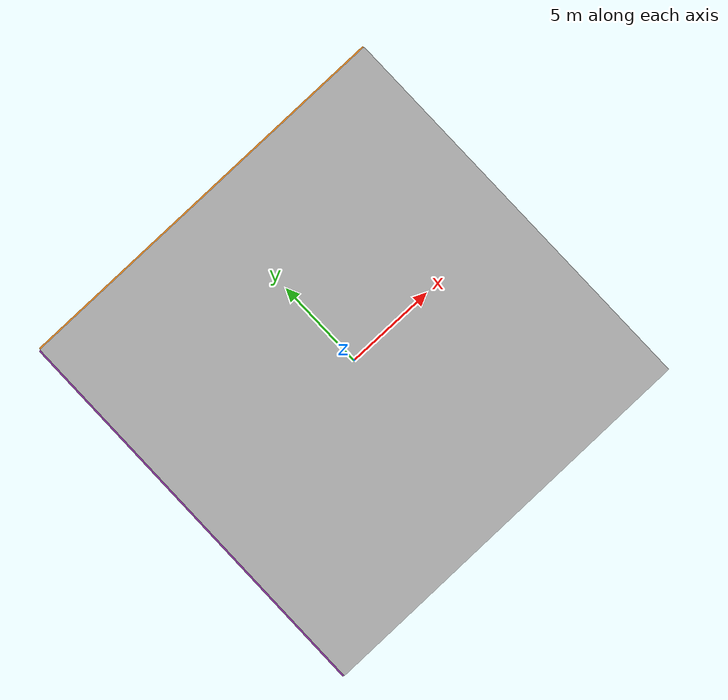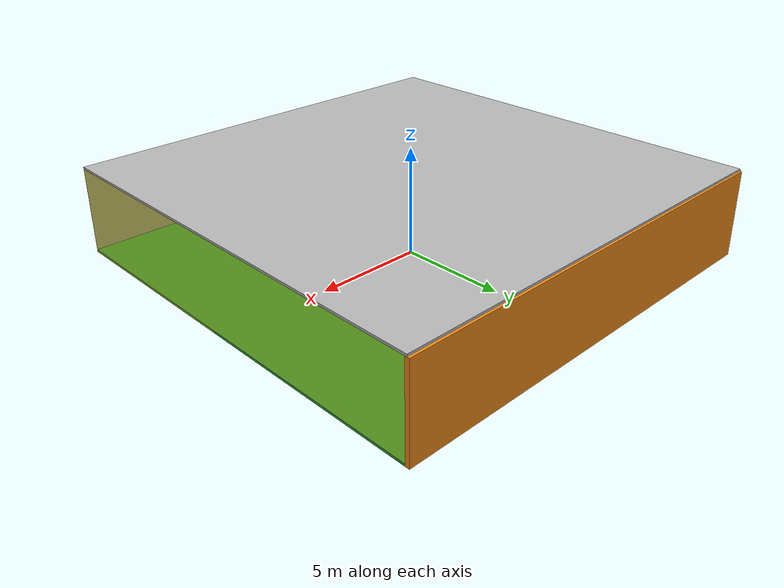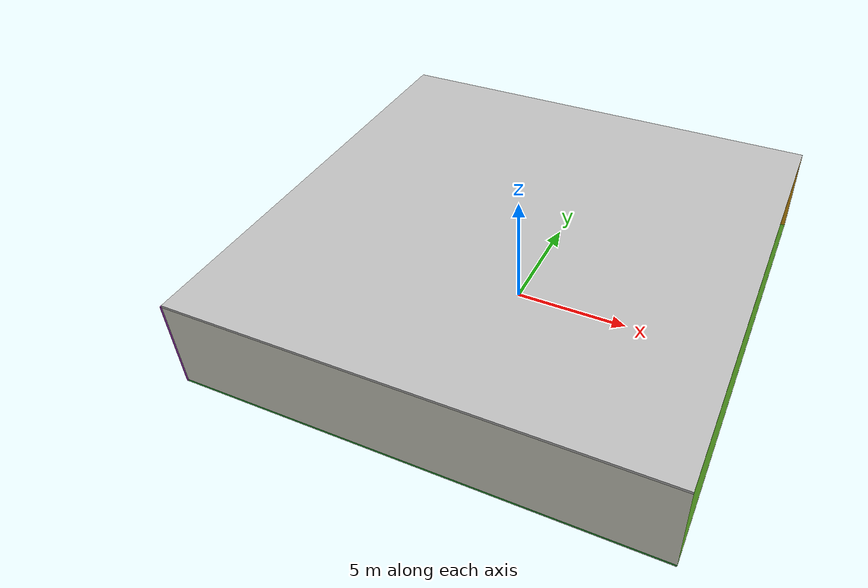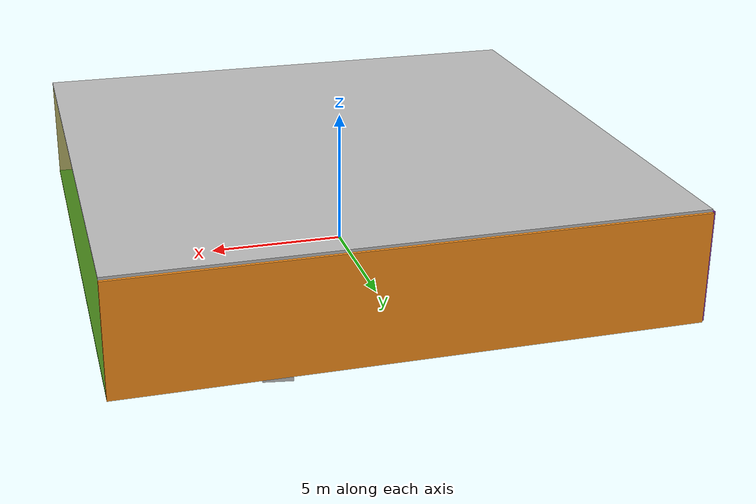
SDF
<sdf version="1.4">
 <world name="default">
  <physics type="ode">
   <max_step_size>0.001</max_step_size>
   <real_time_factor>1</real_time_factor>
   <real_time_update_rate>1000</real_time_update_rate>
   <gravity>0 0 -9.8</gravity>
  </physics>
  <scene><ambient>0.4 0.4 0.4 1</ambient><background>0.7 0.7 0.7 1</background><shadows>1</shadows></scene>
  <model name="Surrounding">
   <static>1</static>
   <link name="Ceiling">
    <collision name="Ceiling_Collision"><geometry><box><size>20 20 0.1</size></box></geometry></collision>
    <visual name="Ceiling_Visual">
     <geometry><box><size>20 20 0.1</size></box></geometry>
     <material>
      <script><uri>file://media/materials/scripts/gazebo.material</uri><name>Gazebo/LightOn</name></script>
     </material>
    </visual>
    <pose>0 0 4.05 0 0 0</pose>
   </link>
   <link name="Wall_South">
    <collision name="Wall_South_Collision">
     <geometry><box><size>20 0 4</size></box></geometry>
     <pose>0 0 2 0 -0 0</pose>
    </collision>
    <visual name="Wall_South_Visual">
     <pose>0 0 2 0 -0 0</pose>
     <geometry><box><size>20 0 4</size></box></geometry>
     <material>
      <script><uri>file://media/materials/scripts/gazebo.material</uri><name>Gazebo/PaintedWall</name></script>
     </material>
    </visual>
    <velocity_decay><linear>0</linear><angular>0</angular></velocity_decay>
    <pose>0 -10 0 0 -0 0</pose>
   </link>
   <link name="Wall_East">
    <collision name="Wall_21_Collision">
     <geometry><box><size>20 0 4</size></box></geometry>
     <pose>0 0 2 0 -0 0</pose>
    </collision>
    <visual name="Wall_21_Visual">
     <pose>0 0 2 0 -0 0</pose>
     <geometry><box><size>20 0 4</size></box></geometry>
     <material>
      <script>
       <uri>file://media/materials/scripts/gazebo.material</uri>
       <name>Gazebo/YellowTransparent</name>
      </script>
     </material>
    </visual>
    <velocity_decay><linear>0</linear><angular>0</angular></velocity_decay>
    <pose>10 0 0 0 -0 1.5708</pose>
   </link>
   <link name="Wall_North">
    <collision name="Wall_22_Collision">
     <geometry><box><size>20 0.2 4</size></box></geometry>
     <pose>0 0 2 0 -0 0</pose>
    </collision>
    <visual name="Wall_22_Visual">
     <pose>0 0 2 0 -0 0</pose>
     <geometry><box><size>20 0.2 4</size></box></geometry>
     <material>
      <script><uri>file://media/materials/scripts/gazebo.material</uri><name>Gazebo/Orange</name></script>
     </material>
    </visual>
    <velocity_decay><linear>0</linear><angular>0</angular></velocity_decay>
    <pose>0 10 0 0 -0 0</pose>
   </link>
   <link name="Wall_West">
    <collision name="Wall_23_Collision">
     <geometry><box><size>20 0.2 4</size></box></geometry>
     <pose>0 0 2 0 -0 0</pose>
    </collision>
    <visual name="Wall_23_Visual">
     <pose>0 0 2 0 -0 0</pose>
     <geometry><box><size>20 0.2 4</size></box></geometry>
     <material>
      <script><uri>file://media/materials/scripts/gazebo.material</uri><name>Gazebo/Purple</name></script>
     </material>
    </visual>
    <velocity_decay><linear>0</linear><angular>0</angular></velocity_decay>
    <pose>-10 0 0 0 0 -1.5708</pose>
   </link>
   <link name="Ground_link">
    <collision name="collision">
     <pose>0 0 .05 0 -0 0</pose>
     <geometry><box><size>20 20 0.1</size></box></geometry>
    </collision>
    <visual name="visual">
     <pose>0 0 .05 0 -0 0</pose>
     <geometry><box><size>20 20 0.1</size></box></geometry>
     <material>
      <script><uri>file://media/materials/scripts/gazebo.material</uri><name>Gazebo/GreenGlow</name></script>
     </material>
    </visual>
   </link>
   <static>1</static>
  </model>
  <spherical_coordinates>
   <surface_model>EARTH_WGS84</surface_model>
   <latitude_deg>0</latitude_deg>
   <longitude_deg>0</longitude_deg>
   <elevation>0</elevation>
   <heading_deg>0</heading_deg>
  </spherical_coordinates>
  <light name="lightball_0" type="diffuse">
   <diffuse>0.8 0.8 0.8 1</diffuse>
   <specular>0.2 0.2 0.2 1</specular>
   <attenuation>
    <range>100</range>
    <constant>0.7</constant>
    <linear>0.01</linear>
    <quadratic>0.001</quadratic>
   </attenuation>
   <direction>-0.5 0.1 -0.9</direction>
   <pose>-5.72460857039 -2.6021360514 0.869692829086 0 0 0</pose>
  </light>
  <light name="lightball_1" type="diffuse">
   <diffuse>0.8 0.8 0.8 1</diffuse>
   <specular>0.2 0.2 0.2 1</specular>
   <attenuation>
    <range>100</range>
    <constant>0.7</constant>
    <linear>0.01</linear>
    <quadratic>0.001</quadratic>
   </attenuation>
   <direction>-0.5 0.1 -0.9</direction>
   <pose>1.35755300905 -4.20694373705 2.97067345923 0 0 0</pose>
  </light>
  <light name="lightball_2" type="diffuse">
   <diffuse>0.8 0.8 0.8 1</diffuse>
   <specular>0.2 0.2 0.2 1</specular>
   <attenuation>
    <range>100</range>
    <constant>0.7</constant>
    <linear>0.01</linear>
    <quadratic>0.001</quadratic>
   </attenuation>
   <direction>-0.5 0.1 -0.9</direction>
   <pose>-5.35633549889 2.1842522217 3.13884395019 0 0 0</pose>
  </light>
  <light name="lightball_3" type="diffuse">
   <diffuse>0.8 0.8 0.8 1</diffuse>
   <specular>0.2 0.2 0.2 1</specular>
   <attenuation>
    <range>100</range>
    <constant>0.7</constant>
    <linear>0.01</linear>
    <quadratic>0.001</quadratic>
   </attenuation>
   <direction>-0.5 0.1 -0.9</direction>
   <pose>4.40777350703 6.85088605751 1.81984985195 0 0 0</pose>
  </light>
  <light name="lightball_4" type="diffuse">
   <diffuse>0.8 0.8 0.8 1</diffuse>
   <specular>0.2 0.2 0.2 1</specular>
   <attenuation>
    <range>100</range>
    <constant>0.7</constant>
    <linear>0.01</linear>
    <quadratic>0.001</quadratic>
   </attenuation>
   <direction>-0.5 0.1 -0.9</direction>
   <pose>4.44564972961 -4.70668892524 3.3079871471 0 0 0</pose>
  </light>
  <include><uri>model://cabinet</uri><pose>-7.06364760546 7.07699108525 0 0 0 1.30784889731</pose></include>
  <include>
   <uri>model://construction_cone</uri>
   <pose>1.62559411367 -4.22682224315 0 0 0 0.739548953248</pose>
  </include>
  <include>
   <uri>model://textured_shapes</uri>
   <pose>4.23733705858 7.44999347402 0 0 0 2.98169827858</pose>
  </include>
 </world>
</sdf>

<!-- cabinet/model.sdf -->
<sdf version="1.5">
  <model name="cabinet">
    <static>true</static>
    <link name="cabinet_bottom_plate">
      <inertial>
        <pose>0 0 -1 0 0 0</pose>
        <inertia>
          <ixx>2.050000</ixx>
          <ixy>0</ixy>
          <ixz>0</ixz>
          <iyy>2.050000</iyy>
          <iyz>0</iyz>
          <izz>2.050000</izz>
        </inertia>
        <mass>25.000000</mass>
      </inertial>
      <collision name="cabinet_bottom_plate_geom">
        <pose>0 0 0.010000 0 0 0</pose>
        <geometry>
          <box>
            <size>0.450000 0.450000 0.020000</size>
          </box>
        </geometry>
      </collision>
      <visual name="cabinet_bottom_plate_geom_visual">
        <pose>0 0 0.010000 0 0 0</pose>
        <geometry>
          <box>
            <size>0.450000 0.450000 0.020000</size>
          </box>
        </geometry>
        <material>
          <script>
            <uri>model://media/materials/scripts/gazebo.material</uri>
            <name>Gazebo/Wood</name>
          </script>
        </material>
      </visual>
      <collision name="cabinet_bottom_plate_geom_cabinet_back_plate">
        <pose>0.235000 0 0.510000 0 0 0</pose>
        <geometry>
          <box>
            <size>0.020000 0.450000 1.020000</size>
          </box>
        </geometry>
      </collision>
      <visual name="cabinet_bottom_plate_geom_cabinet_back_plate_visual">
        <pose>0.235000 0 0.510000 0 0 0</pose>
        <geometry>
          <box>
            <size>0.020000 0.450000 1.020000</size>
          </box>
        </geometry>
        <material>
          <script>
            <uri>model://media/materials/scripts/gazebo.material</uri>
            <name>Gazebo/Wood</name>
          </script>
        </material>
      </visual>
      <collision name="cabinet_bottom_plate_geom_cabinet_left_plate">
        <pose>0 0.235000 0.510000 0 0 0</pose>
        <geometry>
          <box>
            <size>0.450000 0.020000 1.020000</size>
          </box>
        </geometry>
      </collision>
      <visual name="cabinet_bottom_plate_geom_cabinet_left_plate_visual">
        <pose>0 0.235000 0.510000 0 0 0</pose>
        <geometry>
          <box>
            <size>0.450000 0.020000 1.020000</size>
          </box>
        </geometry>
        <material>
          <script>
            <uri>model://media/materials/scripts/gazebo.material</uri>
            <name>Gazebo/Wood</name>
          </script>
        </material>
      </visual>
      <collision name="cabinet_bottom_plate_geom_cabinet_middle_plate">
        <pose>0 0 0.510000 0 0 0</pose>
        <geometry>
          <box>
            <size>0.450000 0.450000 0.020000</size>
          </box>
        </geometry>
      </collision>
      <visual name="cabinet_bottom_plate_geom_cabinet_middle_plate_visual">
        <pose>0 0 0.510000 0 0 0</pose>
        <geometry>
          <box>
            <size>0.450000 0.450000 0.020000</size>
          </box>
        </geometry>
        <material>
          <script>
            <uri>model://media/materials/scripts/gazebo.material</uri>
            <name>Gazebo/Wood</name>
          </script>
        </material>
      </visual>
      <collision name="cabinet_bottom_plate_geom_cabinet_right_plate">
        <pose>0 -0.235000 0.510000 0 0 0</pose>
        <geometry>
          <box>
            <size>0.450000 0.020000 1.020000</size>
          </box>
        </geometry>
      </collision>
      <visual name="cabinet_bottom_plate_geom_cabinet_right_plate_visual">
        <pose>0 -0.235000 0.510000 0 0 0</pose>
        <geometry>
          <box>
            <size>0.450000 0.020000 1.020000</size>
          </box>
        </geometry>
        <material>
          <script>
            <uri>model://media/materials/scripts/gazebo.material</uri>
            <name>Gazebo/Wood</name>
          </script>
        </material>
      </visual>
      <collision name="cabinet_bottom_plate_geom_cabinet_top_plate">
        <pose>0 0 1.010000 0 0 0</pose>
        <geometry>
          <box>
            <size>0.450000 0.450000 0.020000</size>
          </box>
        </geometry>
      </collision>
      <visual name="cabinet_bottom_plate_geom_cabinet_top_plate_visual">
        <pose>0 0 1.010000 0 0 0</pose>
        <geometry>
          <box>
            <size>0.450000 0.450000 0.020000</size>
          </box>
        </geometry>
        <material>
          <script>
            <uri>model://media/materials/scripts/gazebo.material</uri>
            <name>Gazebo/Wood</name>
          </script>
        </material>
      </visual>
    </link>
  </model>
</sdf>

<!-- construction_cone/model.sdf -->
<sdf version="1.5">
  <model name="Construction Cone">
    <link name="link">
      <collision name="collision">
        <geometry>
          <mesh>
            <scale>10 10 10</scale>
            <uri>file://isr-testbed/construction_cone/meshes/construction_cone.dae</uri>
          </mesh>
        </geometry>
      </collision>
      <visual name="visual">
        <geometry>
          <mesh>
            <scale>10 10 10</scale>
            <uri>file://isr-testbed/construction_cone/meshes/construction_cone.dae</uri>
          </mesh>
        </geometry>
      </visual>
    </link>
  </model>
</sdf>

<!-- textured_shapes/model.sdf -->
<sdf version="1.6">
  <model name="textured_shapes">
    <pose>0 0 0.5 0 0 0</pose>
    <link name="box">
      <pose>0 -1.5 0 0 0 0</pose>
      <collision name="collision">
        <geometry>
          <box>
            <size>1 1 1</size>
          </box>
        </geometry>
      </collision>
      <visual name="visual">
        <geometry>
          <box>
            <size>1 1 1</size>
          </box>
        </geometry>
        <material>
          <script>
            <uri>model://../model_source/models/textured_shapes/materials/scripts</uri>
            <uri>model://../model_source/models/textured_shapes/materials/textures</uri>
            <name>TexturedShape/Squares</name>
          </script>
        </material>
      </visual>
    </link>
    <link name="sphere">
      <collision name="collision">
        <geometry>
          <sphere>
            <radius>0.5</radius>
          </sphere>
        </geometry>
      </collision>
      <visual name="visual">
        <geometry>
          <sphere>
            <radius>0.5</radius>
          </sphere>
        </geometry>
        <material>
          <script>
            <uri>model://../model_source/models/textured_shapes/materials/scripts</uri>
            <uri>model://../model_source/models/textured_shapes/materials/textures</uri>
            <name>TexturedShape/Squares</name>
          </script>
        </material>
      </visual>
    </link>
    <link name="cylinder">
      <pose>0 1.5 0 0 0 0</pose>
      <collision name="collision">
        <geometry>
          <cylinder>
            <radius>0.5</radius>
            <length>1</length>
          </cylinder>
        </geometry>
      </collision>
      <visual name="visual">
        <geometry>
          <cylinder>
            <radius>0.5</radius>
            <length>1</length>
          </cylinder>
        </geometry>
        <material>
          <script>
            <uri>model://../model_source/models/textured_shapes/materials/scripts</uri>
            <uri>model://../model_source/models/textured_shapes/materials/textures</uri>
            <name>TexturedShape/Squares</name>
          </script>
        </material>
      </visual>
    </link>
  </model>
</sdf>
